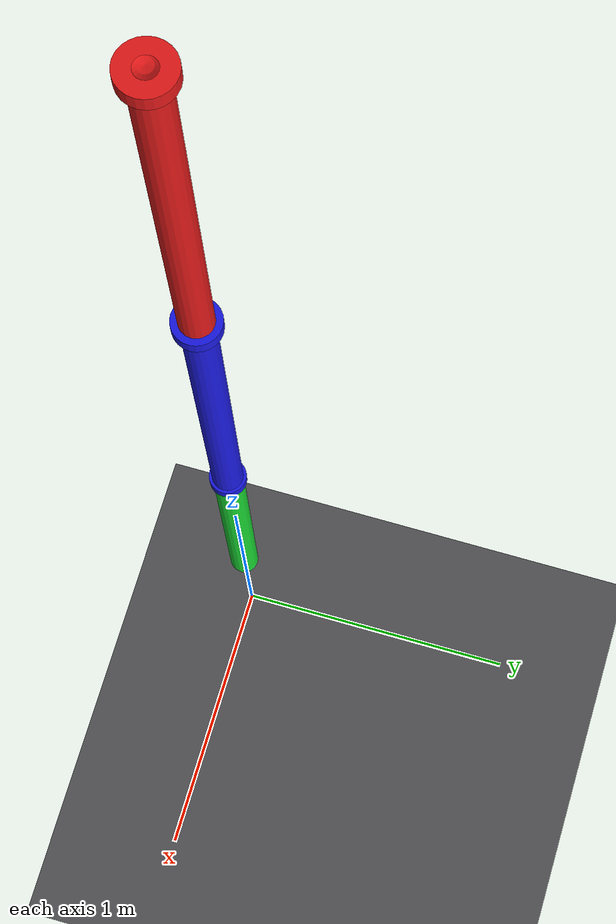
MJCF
<mujoco model="three_link_pendulum_vertical">
  <compiler angle="radian" coordinate="local" inertiafromgeom="false"/>
  <!-- Enable gravity for a true pendulum -->
  <option gravity="0 0 -9.81"/>

  <visual>
    <quality shadowsize="4096" offsamples="16"/>
    <map znear="0.002" zfar="50" fogstart="8" fogend="20"/>
  </visual>

  <asset>
    <!-- Skybox -->
    <texture name="skybox" type="skybox" builtin="gradient"
             rgb1="0.70 0.80 0.95" rgb2="0.05 0.08 0.15" width="512" height="512"/>

    <!-- Floor checkerboard: darker colors, reduced reflection and highlights -->
    <texture name="grid" type="2d" builtin="checker" width="1024" height="1024"
             rgb1="0.36 0.36 0.37" rgb2="0.28 0.28 0.29" mark="edge" markrgb="0.20 0.20 0.20"/>
    <material name="mat_floor" texture="grid" texrepeat="6 6" texuniform="true"
              reflectance="0.1" specular="0.2" shininess="0.15"/>

    <!-- Link materials -->
    <material name="link_red"   rgba="0.90 0.10 0.10 1" specular="0.5" shininess="0.35" reflectance="0.2"/>
    <material name="link_blue"  rgba="0.10 0.10 0.90 1" specular="0.5" shininess="0.35" reflectance="0.2"/>
    <material name="link_green" rgba="0.10 0.85 0.20 1" specular="0.5" shininess="0.35" reflectance="0.2"/>

    <material name="tip_mat" rgba="0.98 0.90 0.15 1" emission="0.3" specular="0.2" shininess="0.3"/>
  </asset>

  <worldbody>
    <!-- Softer lights: lower diffuse/specular to reduce floor glare -->
    <light name="sun" directional="true" castshadow="true"
           diffuse="0.85 0.85 0.85" specular="0.15 0.15 0.15"
           pos="0 0 10" dir="0 0 -1"/>
    <light name="fill" directional="false" castshadow="false"
           diffuse="0.35 0.35 0.35" specular="0.05 0.05 0.05"
           pos="3 -3 2"/>

    <geom type="plane" size="4 4 0.01" material="mat_floor" pos="0 0 -0.1"/>

    <!-- Cameras -->
    <camera name="iso"  pos="3 -3 3.5" euler="0 -0.7 2.2" fovy="45"/>
    <camera name="side" pos="3 0 2.5"  euler="0 -0.2 3.1416" fovy="40"/>

    <!-- Triple pendulum in the xz-plane; joint clearance c=0.02 m -->
    <!-- Link lengths: L1 = 1.20 m (red, top), L2 = 1.20 m (blue, middle), L3 = 0.80 m (green, bottom) -->
    <!-- All three links are coplanar in xz; each joint rotates about +y so motion is planar -->
    <body name="link1_body" pos="0 0 3.8">
      <!-- CoM at -L1/2 along local z (downward) -->
      <inertial mass="1.4" pos="0 0 -0.60" fullinertia="1.3 1.3 0.12 0 0 0"/>
      <!-- Hinge about +y; 0 rad = hanging straight down -->
      <joint name="joint1" type="hinge" axis="0 1 0" pos="0 0 0"/>

      <!-- Collision: spans from -c to -L1; half=(L1-c)/2=0.59, center=-(L1+c)/2=-0.61 -->
      <geom name="link1_coll" type="box" size="0.05 0.05 0.59" pos="0 0 -0.61" rgba="1 0 0 0"/>

      <!-- Visualization: rod & joint caps (render-only) -->
      <geom name="link1_vis" type="capsule" fromto="0 0 -0.02  0 0 -1.20" size="0.05"
            material="link_red" contype="0" conaffinity="0"/>
      <geom name="pin1_vis" type="cylinder" pos="0 0 0" size="0.07 0.02"
            material="link_red" contype="0" conaffinity="0"/>
      <geom name="pin1_tip_vis" type="cylinder" pos="0 0 -1.20" size="0.06 0.018"
            material="link_red" contype="0" conaffinity="0"/>

      <body name="link2_body" pos="0 0 -1.20">
        <inertial mass="1.0" pos="0 0 -0.60" fullinertia="1.1 1.1 0.11 0 0 0"/>
        <joint name="joint2" type="hinge" axis="0 1 0" pos="0 0 0"/>

        <!-- Collision: L2 same as L1 -->
        <geom name="link2_coll" type="box" size="0.05 0.05 0.59" pos="0 0 -0.61" rgba="0 0 1 0"/>

        <!-- Visualization: blue -->
        <geom name="link2_vis" type="capsule" fromto="0 0 -0.02  0 0 -1.20" size="0.05"
              material="link_blue" contype="0" conaffinity="0"/>
        <geom name="pin2_vis" type="cylinder" pos="0 0 0" size="0.07 0.02"
              material="link_blue" contype="0" conaffinity="0"/>
        <geom name="pin2_tip_vis" type="cylinder" pos="0 0 -1.20" size="0.06 0.018"
              material="link_blue" contype="0" conaffinity="0"/>

        <body name="link3_body" pos="0 0 -1.20">
          <!-- CHANGED: mass ↑ to 0.9 kg, length L3 ↑ to 0.90 m, COM to -0.45 -->
          <inertial mass="0.9" pos="0 0 -0.45" fullinertia="0.6 0.6 0.06 0 0 0"/>
          <joint name="joint3" type="hinge" axis="0 1 0" pos="0 0 0"/>

          <!-- Third link L3=0.80; half=(L3-c)/2=0.39, center=-(L3+c)/2=-0.41 -->
          <geom name="link3_coll" type="box" size="0.05 0.05 0.44" pos="0 0 -0.46" rgba="0 1 0 0"/>

          <!-- Visualization: green (bottom) -->
          <geom name="link3_vis" type="capsule" fromto="0 0 -0.02  0 0 -0.90" size="0.05"
                material="link_green" contype="0" conaffinity="0"/>
          <geom name="pin3_vis" type="cylinder" pos="0 0 0" size="0.06 0.018"
                material="link_green" contype="0" conaffinity="0"/>

          <site name="tip" pos="0 0 -0.90" size="0.0001" material="tip_mat"/>
        </body>
      </body>
    </body>
  </worldbody>

  <sensor>
    <!-- Joint positions and velocities -->
    <jointpos joint="joint1"/>
    <jointpos joint="joint2"/>
    <jointpos joint="joint3"/>

    <jointvel joint="joint1"/>
    <jointvel joint="joint2"/>
    <jointvel joint="joint3"/>

    <!-- Actuator torques -->
    <actuatorfrc actuator="m1"/>
    <actuatorfrc actuator="m2"/>
    <actuatorfrc actuator="m3"/>

    <!-- Tip Cartesian position -->
    <framepos objtype="site" objname="tip"/>
  </sensor>

  <actuator>
    <motor name="m1" joint="joint1" gear="1"/>
    <motor name="m2" joint="joint2" gear="1"/>
    <motor name="m3" joint="joint3" gear="1"/>
  </actuator>

  <keyframe>
    <!-- Home pose: all q = 0 rad -> straight down -->
    <key name="home_down" qpos="0 0 0" ctrl="0 0 0"/>
  </keyframe>
</mujoco>
